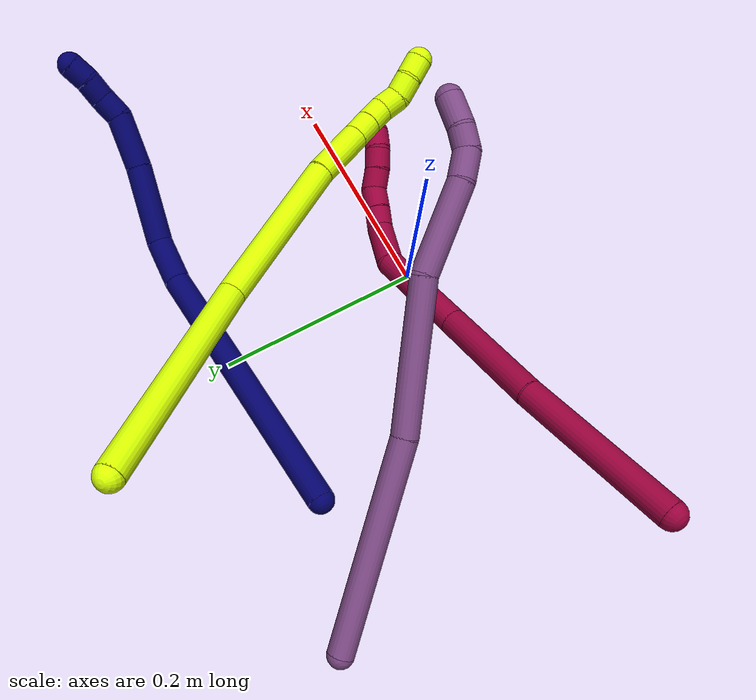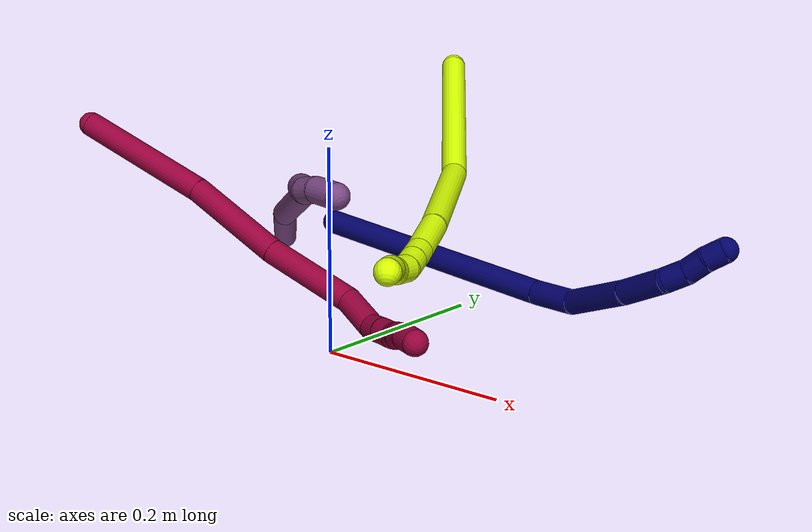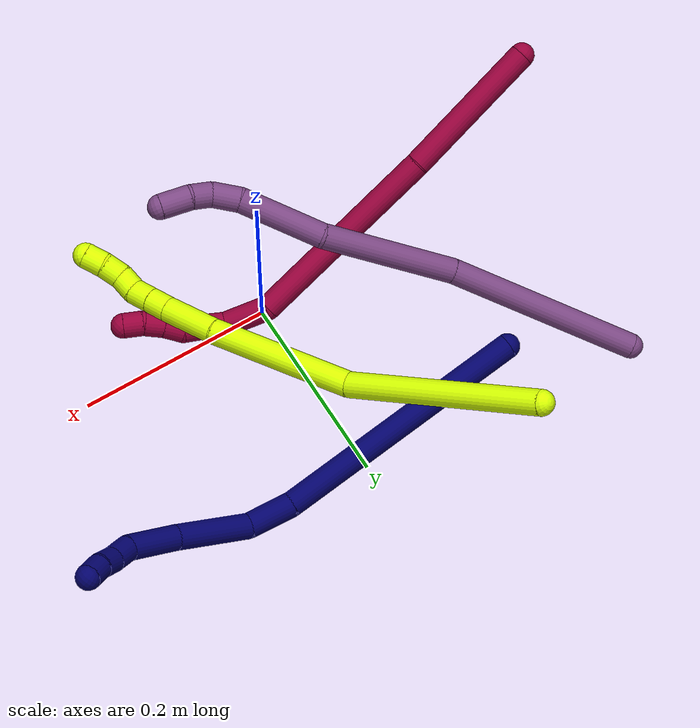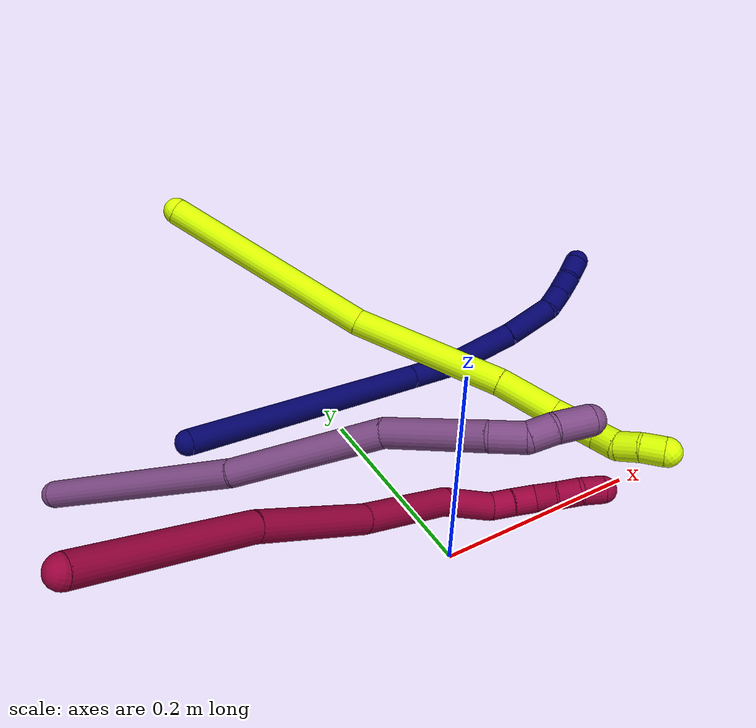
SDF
<sdf version="1.7">
 <world name="default">
  <model name="7">
   <static>0</static>
   <link name="7">
    <collision name="collision-cylinder-e_1_1_4">
     <pose>0.066317 -0.001298 -0.112353 3.13004 0.533197 3.09929</pose>
     <geometry><cylinder><radius>0.0125</radius><length>0.260944</length></cylinder></geometry>
     <surface>
      <friction><ode><mu>1.16</mu><mu2>1.16</mu2><slip1>0</slip1><slip2>0</slip2></ode></friction>
      <contact><ode><kp>1e+06</kp><kd>1</kd><max_vel>0</max_vel><min_depth>0.001</min_depth></ode></contact>
     </surface>
    </collision>
    <visual name="visual-cylinder-e_1_1_4">
     <pose>0.066317 -0.001298 -0.112353 3.13004 0.533197 3.09929</pose>
     <geometry><cylinder><radius>0.0125</radius><length>0.260944</length></cylinder></geometry>
     <material><ambient>0.003922 0 0.403922 1</ambient></material>
    </visual>
    <collision name="collision-cylinder-e_2_4_5">
     <pose>0.146467 -0.005777 -0.242865 2.9682 0.643711 2.63165</pose>
     <geometry><cylinder><radius>0.0125</radius><length>0.046094</length></cylinder></geometry>
     <surface>
      <friction><ode><mu>1.16</mu><mu2>1.16</mu2><slip1>0</slip1><slip2>0</slip2></ode></friction>
      <contact><ode><kp>1e+06</kp><kd>1</kd><max_vel>0</max_vel><min_depth>0.001</min_depth></ode></contact>
     </surface>
    </collision>
    <visual name="visual-cylinder-e_2_4_5">
     <pose>0.146467 -0.005777 -0.242865 2.9682 0.643711 2.63165</pose>
     <geometry><cylinder><radius>0.0125</radius><length>0.046094</length></cylinder></geometry>
     <material><ambient>0.003922 0 0.403922 1</ambient></material>
    </visual>
    <collision name="collision-cylinder-e_3_5_6">
     <pose>0.192187 -0.019113 -0.279352 2.63559 0.989422 2.24775</pose>
     <geometry><cylinder><radius>0.0125</radius><length>0.076313</length></cylinder></geometry>
     <surface>
      <friction><ode><mu>1.16</mu><mu2>1.16</mu2><slip1>0</slip1><slip2>0</slip2></ode></friction>
      <contact><ode><kp>1e+06</kp><kd>1</kd><max_vel>0</max_vel><min_depth>0.001</min_depth></ode></contact>
     </surface>
    </collision>
    <visual name="visual-cylinder-e_3_5_6">
     <pose>0.192187 -0.019113 -0.279352 2.63559 0.989422 2.24775</pose>
     <geometry><cylinder><radius>0.0125</radius><length>0.076313</length></cylinder></geometry>
     <material><ambient>0.003922 0 0.403922 1</ambient></material>
    </visual>
    <collision name="collision-cylinder-e_4_6_7">
     <pose>0.246971 -0.033752 -0.309043 2.76582 1.08072 2.52777</pose>
     <geometry><cylinder><radius>0.0125</radius><length>0.0519</length></cylinder></geometry>
     <surface>
      <friction><ode><mu>1.16</mu><mu2>1.16</mu2><slip1>0</slip1><slip2>0</slip2></ode></friction>
      <contact><ode><kp>1e+06</kp><kd>1</kd><max_vel>0</max_vel><min_depth>0.001</min_depth></ode></contact>
     </surface>
    </collision>
    <visual name="visual-cylinder-e_4_6_7">
     <pose>0.246971 -0.033752 -0.309043 2.76582 1.08072 2.52777</pose>
     <geometry><cylinder><radius>0.0125</radius><length>0.0519</length></cylinder></geometry>
     <material><ambient>0.003922 0 0.403922 1</ambient></material>
    </visual>
    <collision name="collision-cylinder-e_5_7_8">
     <pose>0.280174 -0.035409 -0.325045 -2.5945 1.08573 -2.271</pose>
     <geometry><cylinder><radius>0.0125</radius><length>0.023304</length></cylinder></geometry>
     <surface>
      <friction><ode><mu>1.16</mu><mu2>1.16</mu2><slip1>0</slip1><slip2>0</slip2></ode></friction>
      <contact><ode><kp>1e+06</kp><kd>1</kd><max_vel>0</max_vel><min_depth>0.001</min_depth></ode></contact>
     </surface>
    </collision>
    <visual name="visual-cylinder-e_5_7_8">
     <pose>0.280174 -0.035409 -0.325045 -2.5945 1.08573 -2.271</pose>
     <geometry><cylinder><radius>0.0125</radius><length>0.023304</length></cylinder></geometry>
     <material><ambient>0.003922 0 0.403922 1</ambient></material>
    </visual>
    <collision name="collision-cylinder-e_6_8_9">
     <pose>0.300582 -0.030576 -0.33181 -2.38494 1.28914 -2.16878</pose>
     <geometry><cylinder><radius>0.0125</radius><length>0.021028</length></cylinder></geometry>
     <surface>
      <friction><ode><mu>1.16</mu><mu2>1.16</mu2><slip1>0</slip1><slip2>0</slip2></ode></friction>
      <contact><ode><kp>1e+06</kp><kd>1</kd><max_vel>0</max_vel><min_depth>0.001</min_depth></ode></contact>
     </surface>
    </collision>
    <visual name="visual-cylinder-e_6_8_9">
     <pose>0.300582 -0.030576 -0.33181 -2.38494 1.28914 -2.16878</pose>
     <geometry><cylinder><radius>0.0125</radius><length>0.021028</length></cylinder></geometry>
     <material><ambient>0.003922 0 0.403922 1</ambient></material>
    </visual>
    <collision name="collision-cylinder-e_7_9_2">
     <pose>0.319687 -0.025099 -0.33726 -2.33473 1.08053 -1.90458</pose>
     <geometry><cylinder><radius>0.0125</radius><length>0.020416</length></cylinder></geometry>
     <surface>
      <friction><ode><mu>1.16</mu><mu2>1.16</mu2><slip1>0</slip1><slip2>0</slip2></ode></friction>
      <contact><ode><kp>1e+06</kp><kd>1</kd><max_vel>0</max_vel><min_depth>0.001</min_depth></ode></contact>
     </surface>
    </collision>
    <visual name="visual-cylinder-e_7_9_2">
     <pose>0.319687 -0.025099 -0.33726 -2.33473 1.08053 -1.90458</pose>
     <geometry><cylinder><radius>0.0125</radius><length>0.020416</length></cylinder></geometry>
     <material><ambient>0.003922 0 0.403922 1</ambient></material>
    </visual>
    <collision name="collision-sphere-2">
     <pose>0.328693 -0.021628 -0.340585 0 -0 0</pose>
     <geometry><sphere><radius>0.0125</radius></sphere></geometry>
     <surface>
      <friction><ode><mu>1.16</mu><mu2>1.16</mu2><slip1>0</slip1><slip2>0</slip2></ode></friction>
      <contact><ode><kp>1e+06</kp><kd>1</kd><max_vel>0</max_vel><min_depth>0.001</min_depth></ode></contact>
     </surface>
    </collision>
    <visual name="visual-sphere-2">
     <pose>0.328693 -0.021628 -0.340585 0 -0 0</pose>
     <geometry><sphere><radius>0.0125</radius></sphere></geometry>
     <material><ambient>0.003922 0 0.403922 1</ambient></material>
    </visual>
    <collision name="collision-sphere-9">
     <pose>0.310681 -0.02857 -0.333935 0 -0 0</pose>
     <geometry><sphere><radius>0.0125</radius></sphere></geometry>
     <surface>
      <friction><ode><mu>1.16</mu><mu2>1.16</mu2><slip1>0</slip1><slip2>0</slip2></ode></friction>
      <contact><ode><kp>1e+06</kp><kd>1</kd><max_vel>0</max_vel><min_depth>0.001</min_depth></ode></contact>
     </surface>
    </collision>
    <visual name="visual-sphere-9">
     <pose>0.310681 -0.02857 -0.333935 0 -0 0</pose>
     <geometry><sphere><radius>0.0125</radius></sphere></geometry>
     <material><ambient>0.003922 0 0.403922 1</ambient></material>
    </visual>
    <collision name="collision-sphere-4">
     <pose>0.132635 -0.002596 -0.224706 0 -0 0</pose>
     <geometry><sphere><radius>0.0125</radius></sphere></geometry>
     <surface>
      <friction><ode><mu>1.16</mu><mu2>1.16</mu2><slip1>0</slip1><slip2>0</slip2></ode></friction>
      <contact><ode><kp>1e+06</kp><kd>1</kd><max_vel>0</max_vel><min_depth>0.001</min_depth></ode></contact>
     </surface>
    </collision>
    <visual name="visual-sphere-4">
     <pose>0.132635 -0.002596 -0.224706 0 -0 0</pose>
     <geometry><sphere><radius>0.0125</radius></sphere></geometry>
     <material><ambient>0.003922 0 0.403922 1</ambient></material>
    </visual>
    <collision name="collision-sphere-1">
     <geometry><sphere><radius>0.0125</radius></sphere></geometry>
     <surface>
      <friction><ode><mu>1.16</mu><mu2>1.16</mu2><slip1>0</slip1><slip2>0</slip2></ode></friction>
      <contact><ode><kp>1e+06</kp><kd>1</kd><max_vel>0</max_vel><min_depth>0.001</min_depth></ode></contact>
     </surface>
    </collision>
    <visual name="visual-sphere-1">
     <geometry><sphere><radius>0.0125</radius></sphere></geometry>
     <material><ambient>0.003922 0 0.403922 1</ambient></material>
    </visual>
    <collision name="collision-sphere-8">
     <pose>0.290482 -0.032583 -0.329685 0 -0 0</pose>
     <geometry><sphere><radius>0.0125</radius></sphere></geometry>
     <surface>
      <friction><ode><mu>1.16</mu><mu2>1.16</mu2><slip1>0</slip1><slip2>0</slip2></ode></friction>
      <contact><ode><kp>1e+06</kp><kd>1</kd><max_vel>0</max_vel><min_depth>0.001</min_depth></ode></contact>
     </surface>
    </collision>
    <visual name="visual-sphere-8">
     <pose>0.290482 -0.032583 -0.329685 0 -0 0</pose>
     <geometry><sphere><radius>0.0125</radius></sphere></geometry>
     <material><ambient>0.003922 0 0.403922 1</ambient></material>
    </visual>
    <collision name="collision-sphere-5">
     <pose>0.160299 -0.008957 -0.261023 0 -0 0</pose>
     <geometry><sphere><radius>0.0125</radius></sphere></geometry>
     <surface>
      <friction><ode><mu>1.16</mu><mu2>1.16</mu2><slip1>0</slip1><slip2>0</slip2></ode></friction>
      <contact><ode><kp>1e+06</kp><kd>1</kd><max_vel>0</max_vel><min_depth>0.001</min_depth></ode></contact>
     </surface>
    </collision>
    <visual name="visual-sphere-5">
     <pose>0.160299 -0.008957 -0.261023 0 -0 0</pose>
     <geometry><sphere><radius>0.0125</radius></sphere></geometry>
     <material><ambient>0.003922 0 0.403922 1</ambient></material>
    </visual>
    <collision name="collision-sphere-6">
     <pose>0.224075 -0.02927 -0.297681 0 -0 0</pose>
     <geometry><sphere><radius>0.0125</radius></sphere></geometry>
     <surface>
      <friction><ode><mu>1.16</mu><mu2>1.16</mu2><slip1>0</slip1><slip2>0</slip2></ode></friction>
      <contact><ode><kp>1e+06</kp><kd>1</kd><max_vel>0</max_vel><min_depth>0.001</min_depth></ode></contact>
     </surface>
    </collision>
    <visual name="visual-sphere-6">
     <pose>0.224075 -0.02927 -0.297681 0 -0 0</pose>
     <geometry><sphere><radius>0.0125</radius></sphere></geometry>
     <material><ambient>0.003922 0 0.403922 1</ambient></material>
    </visual>
    <collision name="collision-sphere-7">
     <pose>0.269866 -0.038235 -0.320405 0 -0 0</pose>
     <geometry><sphere><radius>0.0125</radius></sphere></geometry>
     <surface>
      <friction><ode><mu>1.16</mu><mu2>1.16</mu2><slip1>0</slip1><slip2>0</slip2></ode></friction>
      <contact><ode><kp>1e+06</kp><kd>1</kd><max_vel>0</max_vel><min_depth>0.001</min_depth></ode></contact>
     </surface>
    </collision>
    <visual name="visual-sphere-7">
     <pose>0.269866 -0.038235 -0.320405 0 -0 0</pose>
     <geometry><sphere><radius>0.0125</radius></sphere></geometry>
     <material><ambient>0.003922 0 0.403922 1</ambient></material>
    </visual>
    <inertial>
     <pose>0.141835 -0.011592 -0.198616 0 -0 0</pose>
     <mass>0.5</mass>
     <inertia>
      <ixx>-0.001207</ixx>
      <ixy>0</ixy>
      <ixz>0</ixz>
      <iyy>0.001627</iyy>
      <iyz>0</iyz>
      <izz>-0.000813</izz>
     </inertia>
    </inertial>
   </link>
   <pose>-0.167548 0.1865 0.064631 0.020948 -0.905847 0.07514</pose>
  </model>
  <model name="8">
   <static>0</static>
   <link name="8">
    <collision name="collision-cylinder-e_1_1_4">
     <pose>0.009141 0.007286 -0.072463 -3.04138 0.124863 -1.7894</pose>
     <geometry><cylinder><radius>0.0125</radius><length>0.1468</length></cylinder></geometry>
     <surface>
      <friction><ode><mu>1.16</mu><mu2>1.16</mu2><slip1>0</slip1><slip2>0</slip2></ode></friction>
      <contact><ode><kp>1e+06</kp><kd>1</kd><max_vel>0</max_vel><min_depth>0.001</min_depth></ode></contact>
     </surface>
    </collision>
    <visual name="visual-cylinder-e_1_1_4">
     <pose>0.009141 0.007286 -0.072463 -3.04138 0.124863 -1.7894</pose>
     <geometry><cylinder><radius>0.0125</radius><length>0.1468</length></cylinder></geometry>
     <material><ambient>0.584314 0 0.227451 1</ambient></material>
    </visual>
    <collision name="collision-cylinder-e_2_4_5">
     <pose>0.021894 0.013891 -0.198624 3.12889 0.067148 2.7679</pose>
     <geometry><cylinder><radius>0.0125</radius><length>0.107645</length></cylinder></geometry>
     <surface>
      <friction><ode><mu>1.16</mu><mu2>1.16</mu2><slip1>0</slip1><slip2>0</slip2></ode></friction>
      <contact><ode><kp>1e+06</kp><kd>1</kd><max_vel>0</max_vel><min_depth>0.001</min_depth></ode></contact>
     </surface>
    </collision>
    <visual name="visual-cylinder-e_2_4_5">
     <pose>0.021894 0.013891 -0.198624 3.12889 0.067148 2.7679</pose>
     <geometry><cylinder><radius>0.0125</radius><length>0.107645</length></cylinder></geometry>
     <material><ambient>0.584314 0 0.227451 1</ambient></material>
    </visual>
    <collision name="collision-cylinder-e_3_5_6">
     <pose>0.032603 0.016281 -0.300114 -3.07739 0.147139 -2.31976</pose>
     <geometry><cylinder><radius>0.0125</radius><length>0.09683</length></cylinder></geometry>
     <surface>
      <friction><ode><mu>1.16</mu><mu2>1.16</mu2><slip1>0</slip1><slip2>0</slip2></ode></friction>
      <contact><ode><kp>1e+06</kp><kd>1</kd><max_vel>0</max_vel><min_depth>0.001</min_depth></ode></contact>
     </surface>
    </collision>
    <visual name="visual-cylinder-e_3_5_6">
     <pose>0.032603 0.016281 -0.300114 -3.07739 0.147139 -2.31976</pose>
     <geometry><cylinder><radius>0.0125</radius><length>0.09683</length></cylinder></geometry>
     <material><ambient>0.584314 0 0.227451 1</ambient></material>
    </visual>
    <collision name="collision-cylinder-e_4_6_7">
     <pose>0.046155 0.011955 -0.368745 2.80037 0.283964 1.38517</pose>
     <geometry><cylinder><radius>0.0125</radius><length>0.046069</length></cylinder></geometry>
     <surface>
      <friction><ode><mu>1.16</mu><mu2>1.16</mu2><slip1>0</slip1><slip2>0</slip2></ode></friction>
      <contact><ode><kp>1e+06</kp><kd>1</kd><max_vel>0</max_vel><min_depth>0.001</min_depth></ode></contact>
     </surface>
    </collision>
    <visual name="visual-cylinder-e_4_6_7">
     <pose>0.046155 0.011955 -0.368745 2.80037 0.283964 1.38517</pose>
     <geometry><cylinder><radius>0.0125</radius><length>0.046069</length></cylinder></geometry>
     <material><ambient>0.584314 0 0.227451 1</ambient></material>
    </visual>
    <collision name="collision-cylinder-e_5_7_8">
     <pose>0.059428 0.001916 -0.396803 2.79115 0.725608 2.26882</pose>
     <geometry><cylinder><radius>0.0125</radius><length>0.020555</length></cylinder></geometry>
     <surface>
      <friction><ode><mu>1.16</mu><mu2>1.16</mu2><slip1>0</slip1><slip2>0</slip2></ode></friction>
      <contact><ode><kp>1e+06</kp><kd>1</kd><max_vel>0</max_vel><min_depth>0.001</min_depth></ode></contact>
     </surface>
    </collision>
    <visual name="visual-cylinder-e_5_7_8">
     <pose>0.059428 0.001916 -0.396803 2.79115 0.725608 2.26882</pose>
     <geometry><cylinder><radius>0.0125</radius><length>0.020555</length></cylinder></geometry>
     <material><ambient>0.584314 0 0.227451 1</ambient></material>
    </visual>
    <collision name="collision-cylinder-e_6_8_9">
     <pose>0.072891 -0.003353 -0.412062 2.82549 0.665871 2.27783</pose>
     <geometry><cylinder><radius>0.0125</radius><length>0.021508</length></cylinder></geometry>
     <surface>
      <friction><ode><mu>1.16</mu><mu2>1.16</mu2><slip1>0</slip1><slip2>0</slip2></ode></friction>
      <contact><ode><kp>1e+06</kp><kd>1</kd><max_vel>0</max_vel><min_depth>0.001</min_depth></ode></contact>
     </surface>
    </collision>
    <visual name="visual-cylinder-e_6_8_9">
     <pose>0.072891 -0.003353 -0.412062 2.82549 0.665871 2.27783</pose>
     <geometry><cylinder><radius>0.0125</radius><length>0.021508</length></cylinder></geometry>
     <material><ambient>0.584314 0 0.227451 1</ambient></material>
    </visual>
    <collision name="collision-cylinder-e_7_9_10">
     <pose>0.087856 -0.010292 -0.424349 2.3491 0.941917 1.76595</pose>
     <geometry><cylinder><radius>0.0125</radius><length>0.02058</length></cylinder></geometry>
     <surface>
      <friction><ode><mu>1.16</mu><mu2>1.16</mu2><slip1>0</slip1><slip2>0</slip2></ode></friction>
      <contact><ode><kp>1e+06</kp><kd>1</kd><max_vel>0</max_vel><min_depth>0.001</min_depth></ode></contact>
     </surface>
    </collision>
    <visual name="visual-cylinder-e_7_9_10">
     <pose>0.087856 -0.010292 -0.424349 2.3491 0.941917 1.76595</pose>
     <geometry><cylinder><radius>0.0125</radius><length>0.02058</length></cylinder></geometry>
     <material><ambient>0.584314 0 0.227451 1</ambient></material>
    </visual>
    <collision name="collision-cylinder-e_8_10_11">
     <pose>0.103932 -0.017944 -0.433967 2.58484 0.886726 2.0581</pose>
     <geometry><cylinder><radius>0.0125</radius><length>0.020011</length></cylinder></geometry>
     <surface>
      <friction><ode><mu>1.16</mu><mu2>1.16</mu2><slip1>0</slip1><slip2>0</slip2></ode></friction>
      <contact><ode><kp>1e+06</kp><kd>1</kd><max_vel>0</max_vel><min_depth>0.001</min_depth></ode></contact>
     </surface>
    </collision>
    <visual name="visual-cylinder-e_8_10_11">
     <pose>0.103932 -0.017944 -0.433967 2.58484 0.886726 2.0581</pose>
     <geometry><cylinder><radius>0.0125</radius><length>0.020011</length></cylinder></geometry>
     <material><ambient>0.584314 0 0.227451 1</ambient></material>
    </visual>
    <collision name="collision-cylinder-e_9_11_2">
     <pose>0.117598 -0.024468 -0.446746 2.73588 0.632548 2.01936</pose>
     <geometry><cylinder><radius>0.0125</radius><length>0.020001</length></cylinder></geometry>
     <surface>
      <friction><ode><mu>1.16</mu><mu2>1.16</mu2><slip1>0</slip1><slip2>0</slip2></ode></friction>
      <contact><ode><kp>1e+06</kp><kd>1</kd><max_vel>0</max_vel><min_depth>0.001</min_depth></ode></contact>
     </surface>
    </collision>
    <visual name="visual-cylinder-e_9_11_2">
     <pose>0.117598 -0.024468 -0.446746 2.73588 0.632548 2.01936</pose>
     <geometry><cylinder><radius>0.0125</radius><length>0.020001</length></cylinder></geometry>
     <material><ambient>0.584314 0 0.227451 1</ambient></material>
    </visual>
    <collision name="collision-sphere-2">
     <pose>0.123511 -0.027652 -0.454157 0 -0 0</pose>
     <geometry><sphere><radius>0.0125</radius></sphere></geometry>
     <surface>
      <friction><ode><mu>1.16</mu><mu2>1.16</mu2><slip1>0</slip1><slip2>0</slip2></ode></friction>
      <contact><ode><kp>1e+06</kp><kd>1</kd><max_vel>0</max_vel><min_depth>0.001</min_depth></ode></contact>
     </surface>
    </collision>
    <visual name="visual-sphere-2">
     <pose>0.123511 -0.027652 -0.454157 0 -0 0</pose>
     <geometry><sphere><radius>0.0125</radius></sphere></geometry>
     <material><ambient>0.584314 0 0.227451 1</ambient></material>
    </visual>
    <collision name="collision-sphere-11">
     <pose>0.111686 -0.021285 -0.439335 0 -0 0</pose>
     <geometry><sphere><radius>0.0125</radius></sphere></geometry>
     <surface>
      <friction><ode><mu>1.16</mu><mu2>1.16</mu2><slip1>0</slip1><slip2>0</slip2></ode></friction>
      <contact><ode><kp>1e+06</kp><kd>1</kd><max_vel>0</max_vel><min_depth>0.001</min_depth></ode></contact>
     </surface>
    </collision>
    <visual name="visual-sphere-11">
     <pose>0.111686 -0.021285 -0.439335 0 -0 0</pose>
     <geometry><sphere><radius>0.0125</radius></sphere></geometry>
     <material><ambient>0.584314 0 0.227451 1</ambient></material>
    </visual>
    <collision name="collision-sphere-10">
     <pose>0.096177 -0.014602 -0.428599 0 -0 0</pose>
     <geometry><sphere><radius>0.0125</radius></sphere></geometry>
     <surface>
      <friction><ode><mu>1.16</mu><mu2>1.16</mu2><slip1>0</slip1><slip2>0</slip2></ode></friction>
      <contact><ode><kp>1e+06</kp><kd>1</kd><max_vel>0</max_vel><min_depth>0.001</min_depth></ode></contact>
     </surface>
    </collision>
    <visual name="visual-sphere-10">
     <pose>0.096177 -0.014602 -0.428599 0 -0 0</pose>
     <geometry><sphere><radius>0.0125</radius></sphere></geometry>
     <material><ambient>0.584314 0 0.227451 1</ambient></material>
    </visual>
    <collision name="collision-sphere-9">
     <pose>0.079534 -0.005982 -0.4201 0 -0 0</pose>
     <geometry><sphere><radius>0.0125</radius></sphere></geometry>
     <surface>
      <friction><ode><mu>1.16</mu><mu2>1.16</mu2><slip1>0</slip1><slip2>0</slip2></ode></friction>
      <contact><ode><kp>1e+06</kp><kd>1</kd><max_vel>0</max_vel><min_depth>0.001</min_depth></ode></contact>
     </surface>
    </collision>
    <visual name="visual-sphere-9">
     <pose>0.079534 -0.005982 -0.4201 0 -0 0</pose>
     <geometry><sphere><radius>0.0125</radius></sphere></geometry>
     <material><ambient>0.584314 0 0.227451 1</ambient></material>
    </visual>
    <collision name="collision-sphere-4">
     <pose>0.018282 0.014572 -0.144927 0 -0 0</pose>
     <geometry><sphere><radius>0.0125</radius></sphere></geometry>
     <surface>
      <friction><ode><mu>1.16</mu><mu2>1.16</mu2><slip1>0</slip1><slip2>0</slip2></ode></friction>
      <contact><ode><kp>1e+06</kp><kd>1</kd><max_vel>0</max_vel><min_depth>0.001</min_depth></ode></contact>
     </surface>
    </collision>
    <visual name="visual-sphere-4">
     <pose>0.018282 0.014572 -0.144927 0 -0 0</pose>
     <geometry><sphere><radius>0.0125</radius></sphere></geometry>
     <material><ambient>0.584314 0 0.227451 1</ambient></material>
    </visual>
    <collision name="collision-sphere-1">
     <geometry><sphere><radius>0.0125</radius></sphere></geometry>
     <surface>
      <friction><ode><mu>1.16</mu><mu2>1.16</mu2><slip1>0</slip1><slip2>0</slip2></ode></friction>
      <contact><ode><kp>1e+06</kp><kd>1</kd><max_vel>0</max_vel><min_depth>0.001</min_depth></ode></contact>
     </surface>
    </collision>
    <visual name="visual-sphere-1">
     <geometry><sphere><radius>0.0125</radius></sphere></geometry>
     <material><ambient>0.584314 0 0.227451 1</ambient></material>
    </visual>
    <collision name="collision-sphere-8">
     <pose>0.066248 -0.000724 -0.404024 0 -0 0</pose>
     <geometry><sphere><radius>0.0125</radius></sphere></geometry>
     <surface>
      <friction><ode><mu>1.16</mu><mu2>1.16</mu2><slip1>0</slip1><slip2>0</slip2></ode></friction>
      <contact><ode><kp>1e+06</kp><kd>1</kd><max_vel>0</max_vel><min_depth>0.001</min_depth></ode></contact>
     </surface>
    </collision>
    <visual name="visual-sphere-8">
     <pose>0.066248 -0.000724 -0.404024 0 -0 0</pose>
     <geometry><sphere><radius>0.0125</radius></sphere></geometry>
     <material><ambient>0.584314 0 0.227451 1</ambient></material>
    </visual>
    <collision name="collision-sphere-5">
     <pose>0.025505 0.013209 -0.252321 0 -0 0</pose>
     <geometry><sphere><radius>0.0125</radius></sphere></geometry>
     <surface>
      <friction><ode><mu>1.16</mu><mu2>1.16</mu2><slip1>0</slip1><slip2>0</slip2></ode></friction>
      <contact><ode><kp>1e+06</kp><kd>1</kd><max_vel>0</max_vel><min_depth>0.001</min_depth></ode></contact>
     </surface>
    </collision>
    <visual name="visual-sphere-5">
     <pose>0.025505 0.013209 -0.252321 0 -0 0</pose>
     <geometry><sphere><radius>0.0125</radius></sphere></geometry>
     <material><ambient>0.584314 0 0.227451 1</ambient></material>
    </visual>
    <collision name="collision-sphere-6">
     <pose>0.039701 0.019354 -0.347908 0 -0 0</pose>
     <geometry><sphere><radius>0.0125</radius></sphere></geometry>
     <surface>
      <friction><ode><mu>1.16</mu><mu2>1.16</mu2><slip1>0</slip1><slip2>0</slip2></ode></friction>
      <contact><ode><kp>1e+06</kp><kd>1</kd><max_vel>0</max_vel><min_depth>0.001</min_depth></ode></contact>
     </surface>
    </collision>
    <visual name="visual-sphere-6">
     <pose>0.039701 0.019354 -0.347908 0 -0 0</pose>
     <geometry><sphere><radius>0.0125</radius></sphere></geometry>
     <material><ambient>0.584314 0 0.227451 1</ambient></material>
    </visual>
    <collision name="collision-sphere-7">
     <pose>0.052608 0.004555 -0.389582 0 -0 0</pose>
     <geometry><sphere><radius>0.0125</radius></sphere></geometry>
     <surface>
      <friction><ode><mu>1.16</mu><mu2>1.16</mu2><slip1>0</slip1><slip2>0</slip2></ode></friction>
      <contact><ode><kp>1e+06</kp><kd>1</kd><max_vel>0</max_vel><min_depth>0.001</min_depth></ode></contact>
     </surface>
    </collision>
    <visual name="visual-sphere-7">
     <pose>0.052608 0.004555 -0.389582 0 -0 0</pose>
     <geometry><sphere><radius>0.0125</radius></sphere></geometry>
     <material><ambient>0.584314 0 0.227451 1</ambient></material>
    </visual>
    <inertial>
     <pose>0.036022 0.007198 -0.242876 0 -0 0</pose>
     <mass>0.5</mass>
     <inertia>
      <ixx>-0.000468</ixx>
      <ixy>0</ixy>
      <ixz>0</ixz>
      <iyy>-4.6e-05</iyy>
      <iyz>0</iyz>
      <izz>-0.000121</izz>
     </inertia>
    </inertial>
   </link>
   <pose>-0.314874 -0.025117 0.185593 0.541862 -0.941583 -0.509886</pose>
  </model>
  <model name="15">
   <static>0</static>
   <link name="15">
    <collision name="collision-cylinder-e_1_1_4">
     <pose>0.037245 -0.002299 -0.092708 3.11679 0.381903 3.01348</pose>
     <geometry><cylinder><radius>0.0125</radius><length>0.199873</length></cylinder></geometry>
     <surface>
      <friction><ode><mu>1.16</mu><mu2>1.16</mu2><slip1>0</slip1><slip2>0</slip2></ode></friction>
      <contact><ode><kp>1e+06</kp><kd>1</kd><max_vel>0</max_vel><min_depth>0.001</min_depth></ode></contact>
     </surface>
    </collision>
    <visual name="visual-cylinder-e_1_1_4">
     <pose>0.037245 -0.002299 -0.092708 3.11679 0.381903 3.01348</pose>
     <geometry><cylinder><radius>0.0125</radius><length>0.199873</length></cylinder></geometry>
     <material><ambient>0.835294 1 0 1</ambient></material>
    </visual>
    <collision name="collision-cylinder-e_2_4_5">
     <pose>0.116596 -0.021071 -0.242096 2.85876 0.619641 2.3047</pose>
     <geometry><cylinder><radius>0.0125</radius><length>0.145009</length></cylinder></geometry>
     <surface>
      <friction><ode><mu>1.16</mu><mu2>1.16</mu2><slip1>0</slip1><slip2>0</slip2></ode></friction>
      <contact><ode><kp>1e+06</kp><kd>1</kd><max_vel>0</max_vel><min_depth>0.001</min_depth></ode></contact>
     </surface>
    </collision>
    <visual name="visual-cylinder-e_2_4_5">
     <pose>0.116596 -0.021071 -0.242096 2.85876 0.619641 2.3047</pose>
     <geometry><cylinder><radius>0.0125</radius><length>0.145009</length></cylinder></geometry>
     <material><ambient>0.835294 1 0 1</ambient></material>
    </visual>
    <collision name="collision-cylinder-e_3_5_6">
     <pose>0.172049 -0.045735 -0.320737 2.78456 0.517618 1.94514</pose>
     <geometry><cylinder><radius>0.0125</radius><length>0.053943</length></cylinder></geometry>
     <surface>
      <friction><ode><mu>1.16</mu><mu2>1.16</mu2><slip1>0</slip1><slip2>0</slip2></ode></friction>
      <contact><ode><kp>1e+06</kp><kd>1</kd><max_vel>0</max_vel><min_depth>0.001</min_depth></ode></contact>
     </surface>
    </collision>
    <visual name="visual-cylinder-e_3_5_6">
     <pose>0.172049 -0.045735 -0.320737 2.78456 0.517618 1.94514</pose>
     <geometry><cylinder><radius>0.0125</radius><length>0.053943</length></cylinder></geometry>
     <material><ambient>0.835294 1 0 1</ambient></material>
    </visual>
    <collision name="collision-cylinder-e_4_6_7">
     <pose>0.191027 -0.057396 -0.350666 2.73101 0.57498 1.9145</pose>
     <geometry><cylinder><radius>0.0125</radius><length>0.020715</length></cylinder></geometry>
     <surface>
      <friction><ode><mu>1.16</mu><mu2>1.16</mu2><slip1>0</slip1><slip2>0</slip2></ode></friction>
      <contact><ode><kp>1e+06</kp><kd>1</kd><max_vel>0</max_vel><min_depth>0.001</min_depth></ode></contact>
     </surface>
    </collision>
    <visual name="visual-cylinder-e_4_6_7">
     <pose>0.191027 -0.057396 -0.350666 2.73101 0.57498 1.9145</pose>
     <geometry><cylinder><radius>0.0125</radius><length>0.020715</length></cylinder></geometry>
     <material><ambient>0.835294 1 0 1</ambient></material>
    </visual>
    <collision name="collision-cylinder-e_5_7_8">
     <pose>0.202009 -0.064303 -0.366633 2.73558 0.551034 1.8829</pose>
     <geometry><cylinder><radius>0.0125</radius><length>0.020435</length></cylinder></geometry>
     <surface>
      <friction><ode><mu>1.16</mu><mu2>1.16</mu2><slip1>0</slip1><slip2>0</slip2></ode></friction>
      <contact><ode><kp>1e+06</kp><kd>1</kd><max_vel>0</max_vel><min_depth>0.001</min_depth></ode></contact>
     </surface>
    </collision>
    <visual name="visual-cylinder-e_5_7_8">
     <pose>0.202009 -0.064303 -0.366633 2.73558 0.551034 1.8829</pose>
     <geometry><cylinder><radius>0.0125</radius><length>0.020435</length></cylinder></geometry>
     <material><ambient>0.835294 1 0 1</ambient></material>
    </visual>
    <collision name="collision-cylinder-e_6_8_9">
     <pose>0.212975 -0.07385 -0.380233 2.31301 0.595466 1.2185</pose>
     <geometry><cylinder><radius>0.0125</radius><length>0.020025</length></cylinder></geometry>
     <surface>
      <friction><ode><mu>1.16</mu><mu2>1.16</mu2><slip1>0</slip1><slip2>0</slip2></ode></friction>
      <contact><ode><kp>1e+06</kp><kd>1</kd><max_vel>0</max_vel><min_depth>0.001</min_depth></ode></contact>
     </surface>
    </collision>
    <visual name="visual-cylinder-e_6_8_9">
     <pose>0.212975 -0.07385 -0.380233 2.31301 0.595466 1.2185</pose>
     <geometry><cylinder><radius>0.0125</radius><length>0.020025</length></cylinder></geometry>
     <material><ambient>0.835294 1 0 1</ambient></material>
    </visual>
    <collision name="collision-cylinder-e_7_9_10">
     <pose>0.227032 -0.083296 -0.390033 2.46986 1.00491 2.00965</pose>
     <geometry><cylinder><radius>0.0125</radius><length>0.02</length></cylinder></geometry>
     <surface>
      <friction><ode><mu>1.16</mu><mu2>1.16</mu2><slip1>0</slip1><slip2>0</slip2></ode></friction>
      <contact><ode><kp>1e+06</kp><kd>1</kd><max_vel>0</max_vel><min_depth>0.001</min_depth></ode></contact>
     </surface>
    </collision>
    <visual name="visual-cylinder-e_7_9_10">
     <pose>0.227032 -0.083296 -0.390033 2.46986 1.00491 2.00965</pose>
     <geometry><cylinder><radius>0.0125</radius><length>0.02</length></cylinder></geometry>
     <material><ambient>0.835294 1 0 1</ambient></material>
    </visual>
    <collision name="collision-cylinder-e_8_10_2">
     <pose>0.243214 -0.08927 -0.399985 2.71192 0.885348 2.27884</pose>
     <geometry><cylinder><radius>0.0125</radius><length>0.02</length></cylinder></geometry>
     <surface>
      <friction><ode><mu>1.16</mu><mu2>1.16</mu2><slip1>0</slip1><slip2>0</slip2></ode></friction>
      <contact><ode><kp>1e+06</kp><kd>1</kd><max_vel>0</max_vel><min_depth>0.001</min_depth></ode></contact>
     </surface>
    </collision>
    <visual name="visual-cylinder-e_8_10_2">
     <pose>0.243214 -0.08927 -0.399985 2.71192 0.885348 2.27884</pose>
     <geometry><cylinder><radius>0.0125</radius><length>0.02</length></cylinder></geometry>
     <material><ambient>0.835294 1 0 1</ambient></material>
    </visual>
    <collision name="collision-sphere-2">
     <pose>0.250956 -0.091907 -0.40574 0 -0 0</pose>
     <geometry><sphere><radius>0.0125</radius></sphere></geometry>
     <surface>
      <friction><ode><mu>1.16</mu><mu2>1.16</mu2><slip1>0</slip1><slip2>0</slip2></ode></friction>
      <contact><ode><kp>1e+06</kp><kd>1</kd><max_vel>0</max_vel><min_depth>0.001</min_depth></ode></contact>
     </surface>
    </collision>
    <visual name="visual-sphere-2">
     <pose>0.250956 -0.091907 -0.40574 0 -0 0</pose>
     <geometry><sphere><radius>0.0125</radius></sphere></geometry>
     <material><ambient>0.835294 1 0 1</ambient></material>
    </visual>
    <collision name="collision-sphere-10">
     <pose>0.235473 -0.086633 -0.39423 0 -0 0</pose>
     <geometry><sphere><radius>0.0125</radius></sphere></geometry>
     <surface>
      <friction><ode><mu>1.16</mu><mu2>1.16</mu2><slip1>0</slip1><slip2>0</slip2></ode></friction>
      <contact><ode><kp>1e+06</kp><kd>1</kd><max_vel>0</max_vel><min_depth>0.001</min_depth></ode></contact>
     </surface>
    </collision>
    <visual name="visual-sphere-10">
     <pose>0.235473 -0.086633 -0.39423 0 -0 0</pose>
     <geometry><sphere><radius>0.0125</radius></sphere></geometry>
     <material><ambient>0.835294 1 0 1</ambient></material>
    </visual>
    <collision name="collision-sphere-9">
     <pose>0.21859 -0.079959 -0.385836 0 -0 0</pose>
     <geometry><sphere><radius>0.0125</radius></sphere></geometry>
     <surface>
      <friction><ode><mu>1.16</mu><mu2>1.16</mu2><slip1>0</slip1><slip2>0</slip2></ode></friction>
      <contact><ode><kp>1e+06</kp><kd>1</kd><max_vel>0</max_vel><min_depth>0.001</min_depth></ode></contact>
     </surface>
    </collision>
    <visual name="visual-sphere-9">
     <pose>0.21859 -0.079959 -0.385836 0 -0 0</pose>
     <geometry><sphere><radius>0.0125</radius></sphere></geometry>
     <material><ambient>0.835294 1 0 1</ambient></material>
    </visual>
    <collision name="collision-sphere-4">
     <pose>0.07449 -0.004599 -0.185417 0 -0 0</pose>
     <geometry><sphere><radius>0.0125</radius></sphere></geometry>
     <surface>
      <friction><ode><mu>1.16</mu><mu2>1.16</mu2><slip1>0</slip1><slip2>0</slip2></ode></friction>
      <contact><ode><kp>1e+06</kp><kd>1</kd><max_vel>0</max_vel><min_depth>0.001</min_depth></ode></contact>
     </surface>
    </collision>
    <visual name="visual-sphere-4">
     <pose>0.07449 -0.004599 -0.185417 0 -0 0</pose>
     <geometry><sphere><radius>0.0125</radius></sphere></geometry>
     <material><ambient>0.835294 1 0 1</ambient></material>
    </visual>
    <collision name="collision-sphere-1">
     <geometry><sphere><radius>0.0125</radius></sphere></geometry>
     <surface>
      <friction><ode><mu>1.16</mu><mu2>1.16</mu2><slip1>0</slip1><slip2>0</slip2></ode></friction>
      <contact><ode><kp>1e+06</kp><kd>1</kd><max_vel>0</max_vel><min_depth>0.001</min_depth></ode></contact>
     </surface>
    </collision>
    <visual name="visual-sphere-1">
     <geometry><sphere><radius>0.0125</radius></sphere></geometry>
     <material><ambient>0.835294 1 0 1</ambient></material>
    </visual>
    <collision name="collision-sphere-8">
     <pose>0.207359 -0.067741 -0.374631 0 -0 0</pose>
     <geometry><sphere><radius>0.0125</radius></sphere></geometry>
     <surface>
      <friction><ode><mu>1.16</mu><mu2>1.16</mu2><slip1>0</slip1><slip2>0</slip2></ode></friction>
      <contact><ode><kp>1e+06</kp><kd>1</kd><max_vel>0</max_vel><min_depth>0.001</min_depth></ode></contact>
     </surface>
    </collision>
    <visual name="visual-sphere-8">
     <pose>0.207359 -0.067741 -0.374631 0 -0 0</pose>
     <geometry><sphere><radius>0.0125</radius></sphere></geometry>
     <material><ambient>0.835294 1 0 1</ambient></material>
    </visual>
    <collision name="collision-sphere-5">
     <pose>0.158703 -0.037544 -0.298776 0 -0 0</pose>
     <geometry><sphere><radius>0.0125</radius></sphere></geometry>
     <surface>
      <friction><ode><mu>1.16</mu><mu2>1.16</mu2><slip1>0</slip1><slip2>0</slip2></ode></friction>
      <contact><ode><kp>1e+06</kp><kd>1</kd><max_vel>0</max_vel><min_depth>0.001</min_depth></ode></contact>
     </surface>
    </collision>
    <visual name="visual-sphere-5">
     <pose>0.158703 -0.037544 -0.298776 0 -0 0</pose>
     <geometry><sphere><radius>0.0125</radius></sphere></geometry>
     <material><ambient>0.835294 1 0 1</ambient></material>
    </visual>
    <collision name="collision-sphere-6">
     <pose>0.185395 -0.053927 -0.342697 0 -0 0</pose>
     <geometry><sphere><radius>0.0125</radius></sphere></geometry>
     <surface>
      <friction><ode><mu>1.16</mu><mu2>1.16</mu2><slip1>0</slip1><slip2>0</slip2></ode></friction>
      <contact><ode><kp>1e+06</kp><kd>1</kd><max_vel>0</max_vel><min_depth>0.001</min_depth></ode></contact>
     </surface>
    </collision>
    <visual name="visual-sphere-6">
     <pose>0.185395 -0.053927 -0.342697 0 -0 0</pose>
     <geometry><sphere><radius>0.0125</radius></sphere></geometry>
     <material><ambient>0.835294 1 0 1</ambient></material>
    </visual>
    <collision name="collision-sphere-7">
     <pose>0.19666 -0.060865 -0.358636 0 -0 0</pose>
     <geometry><sphere><radius>0.0125</radius></sphere></geometry>
     <surface>
      <friction><ode><mu>1.16</mu><mu2>1.16</mu2><slip1>0</slip1><slip2>0</slip2></ode></friction>
      <contact><ode><kp>1e+06</kp><kd>1</kd><max_vel>0</max_vel><min_depth>0.001</min_depth></ode></contact>
     </surface>
    </collision>
    <visual name="visual-sphere-7">
     <pose>0.19666 -0.060865 -0.358636 0 -0 0</pose>
     <geometry><sphere><radius>0.0125</radius></sphere></geometry>
     <material><ambient>0.835294 1 0 1</ambient></material>
    </visual>
    <inertial>
     <pose>0.110775 -0.026831 -0.218217 0 -0 0</pose>
     <mass>0.5</mass>
     <inertia>
      <ixx>-0.000494</ixx>
      <ixy>0</ixy>
      <ixz>0</ixz>
      <iyy>0.001125</iyy>
      <iyz>0</iyz>
      <izz>-0.000364</izz>
     </inertia>
    </inertial>
   </link>
   <pose>-0.108907 0.318825 0.226732 -0.294754 -0.731123 -0.559321</pose>
  </model>
  <model name="20">
   <static>0</static>
   <link name="20">
    <collision name="collision-cylinder-e_1_1_4">
     <pose>0.063559 -0.045191 -0.060035 2.49633 0.702077 1.6618</pose>
     <geometry><cylinder><radius>0.0125</radius><length>0.196838</length></cylinder></geometry>
     <surface>
      <friction><ode><mu>1.16</mu><mu2>1.16</mu2><slip1>0</slip1><slip2>0</slip2></ode></friction>
      <contact><ode><kp>1e+06</kp><kd>1</kd><max_vel>0</max_vel><min_depth>0.001</min_depth></ode></contact>
     </surface>
    </collision>
    <visual name="visual-cylinder-e_1_1_4">
     <pose>0.063559 -0.045191 -0.060035 2.49633 0.702077 1.6618</pose>
     <geometry><cylinder><radius>0.0125</radius><length>0.196838</length></cylinder></geometry>
     <material><ambient>0.478431 0.278431 0.509804 1</ambient></material>
    </visual>
    <collision name="collision-cylinder-e_2_4_5">
     <pose>0.175241 -0.111353 -0.164637 2.7018 0.773785 2.13807</pose>
     <geometry><cylinder><radius>0.0125</radius><length>0.13772</length></cylinder></geometry>
     <surface>
      <friction><ode><mu>1.16</mu><mu2>1.16</mu2><slip1>0</slip1><slip2>0</slip2></ode></friction>
      <contact><ode><kp>1e+06</kp><kd>1</kd><max_vel>0</max_vel><min_depth>0.001</min_depth></ode></contact>
     </surface>
    </collision>
    <visual name="visual-cylinder-e_2_4_5">
     <pose>0.175241 -0.111353 -0.164637 2.7018 0.773785 2.13807</pose>
     <geometry><cylinder><radius>0.0125</radius><length>0.13772</length></cylinder></geometry>
     <material><ambient>0.478431 0.278431 0.509804 1</ambient></material>
    </visual>
    <collision name="collision-cylinder-e_3_5_6">
     <pose>0.245923 -0.155634 -0.237123 2.44591 0.555164 1.33211</pose>
     <geometry><cylinder><radius>0.0125</radius><length>0.085601</length></cylinder></geometry>
     <surface>
      <friction><ode><mu>1.16</mu><mu2>1.16</mu2><slip1>0</slip1><slip2>0</slip2></ode></friction>
      <contact><ode><kp>1e+06</kp><kd>1</kd><max_vel>0</max_vel><min_depth>0.001</min_depth></ode></contact>
     </surface>
    </collision>
    <visual name="visual-cylinder-e_3_5_6">
     <pose>0.245923 -0.155634 -0.237123 2.44591 0.555164 1.33211</pose>
     <geometry><cylinder><radius>0.0125</radius><length>0.085601</length></cylinder></geometry>
     <material><ambient>0.478431 0.278431 0.509804 1</ambient></material>
    </visual>
    <collision name="collision-cylinder-e_4_6_7">
     <pose>0.274874 -0.184505 -0.276451 2.6881 0.466589 1.60028</pose>
     <geometry><cylinder><radius>0.0125</radius><length>0.028417</length></cylinder></geometry>
     <surface>
      <friction><ode><mu>1.16</mu><mu2>1.16</mu2><slip1>0</slip1><slip2>0</slip2></ode></friction>
      <contact><ode><kp>1e+06</kp><kd>1</kd><max_vel>0</max_vel><min_depth>0.001</min_depth></ode></contact>
     </surface>
    </collision>
    <visual name="visual-cylinder-e_4_6_7">
     <pose>0.274874 -0.184505 -0.276451 2.6881 0.466589 1.60028</pose>
     <geometry><cylinder><radius>0.0125</radius><length>0.028417</length></cylinder></geometry>
     <material><ambient>0.478431 0.278431 0.509804 1</ambient></material>
    </visual>
    <collision name="collision-cylinder-e_5_7_8">
     <pose>0.287564 -0.189752 -0.296205 -3.1041 0.646056 -3.02968</pose>
     <geometry><cylinder><radius>0.0125</radius><length>0.020922</length></cylinder></geometry>
     <surface>
      <friction><ode><mu>1.16</mu><mu2>1.16</mu2><slip1>0</slip1><slip2>0</slip2></ode></friction>
      <contact><ode><kp>1e+06</kp><kd>1</kd><max_vel>0</max_vel><min_depth>0.001</min_depth></ode></contact>
     </surface>
    </collision>
    <visual name="visual-cylinder-e_5_7_8">
     <pose>0.287564 -0.189752 -0.296205 -3.1041 0.646056 -3.02968</pose>
     <geometry><cylinder><radius>0.0125</radius><length>0.020922</length></cylinder></geometry>
     <material><ambient>0.478431 0.278431 0.509804 1</ambient></material>
    </visual>
    <collision name="collision-cylinder-e_6_8_2">
     <pose>0.300058 -0.187728 -0.318382 -3.01854 0.418361 -2.5767</pose>
     <geometry><cylinder><radius>0.0125</radius><length>0.030502</length></cylinder></geometry>
     <surface>
      <friction><ode><mu>1.16</mu><mu2>1.16</mu2><slip1>0</slip1><slip2>0</slip2></ode></friction>
      <contact><ode><kp>1e+06</kp><kd>1</kd><max_vel>0</max_vel><min_depth>0.001</min_depth></ode></contact>
     </surface>
    </collision>
    <visual name="visual-cylinder-e_6_8_2">
     <pose>0.300058 -0.187728 -0.318382 -3.01854 0.418361 -2.5767</pose>
     <geometry><cylinder><radius>0.0125</radius><length>0.030502</length></cylinder></geometry>
     <material><ambient>0.478431 0.278431 0.509804 1</ambient></material>
    </visual>
    <collision name="collision-sphere-2">
     <pose>0.306254 -0.186017 -0.332212 0 -0 0</pose>
     <geometry><sphere><radius>0.0125</radius></sphere></geometry>
     <surface>
      <friction><ode><mu>1.16</mu><mu2>1.16</mu2><slip1>0</slip1><slip2>0</slip2></ode></friction>
      <contact><ode><kp>1e+06</kp><kd>1</kd><max_vel>0</max_vel><min_depth>0.001</min_depth></ode></contact>
     </surface>
    </collision>
    <visual name="visual-sphere-2">
     <pose>0.306254 -0.186017 -0.332212 0 -0 0</pose>
     <geometry><sphere><radius>0.0125</radius></sphere></geometry>
     <material><ambient>0.478431 0.278431 0.509804 1</ambient></material>
    </visual>
    <collision name="collision-sphere-4">
     <pose>0.127119 -0.090383 -0.12007 0 -0 0</pose>
     <geometry><sphere><radius>0.0125</radius></sphere></geometry>
     <surface>
      <friction><ode><mu>1.16</mu><mu2>1.16</mu2><slip1>0</slip1><slip2>0</slip2></ode></friction>
      <contact><ode><kp>1e+06</kp><kd>1</kd><max_vel>0</max_vel><min_depth>0.001</min_depth></ode></contact>
     </surface>
    </collision>
    <visual name="visual-sphere-4">
     <pose>0.127119 -0.090383 -0.12007 0 -0 0</pose>
     <geometry><sphere><radius>0.0125</radius></sphere></geometry>
     <material><ambient>0.478431 0.278431 0.509804 1</ambient></material>
    </visual>
    <collision name="collision-sphere-1">
     <geometry><sphere><radius>0.0125</radius></sphere></geometry>
     <surface>
      <friction><ode><mu>1.16</mu><mu2>1.16</mu2><slip1>0</slip1><slip2>0</slip2></ode></friction>
      <contact><ode><kp>1e+06</kp><kd>1</kd><max_vel>0</max_vel><min_depth>0.001</min_depth></ode></contact>
     </surface>
    </collision>
    <visual name="visual-sphere-1">
     <geometry><sphere><radius>0.0125</radius></sphere></geometry>
     <material><ambient>0.478431 0.278431 0.509804 1</ambient></material>
    </visual>
    <collision name="collision-sphere-8">
     <pose>0.293862 -0.189439 -0.304551 0 -0 0</pose>
     <geometry><sphere><radius>0.0125</radius></sphere></geometry>
     <surface>
      <friction><ode><mu>1.16</mu><mu2>1.16</mu2><slip1>0</slip1><slip2>0</slip2></ode></friction>
      <contact><ode><kp>1e+06</kp><kd>1</kd><max_vel>0</max_vel><min_depth>0.001</min_depth></ode></contact>
     </surface>
    </collision>
    <visual name="visual-sphere-8">
     <pose>0.293862 -0.189439 -0.304551 0 -0 0</pose>
     <geometry><sphere><radius>0.0125</radius></sphere></geometry>
     <material><ambient>0.478431 0.278431 0.509804 1</ambient></material>
    </visual>
    <collision name="collision-sphere-5">
     <pose>0.223364 -0.132323 -0.209203 0 -0 0</pose>
     <geometry><sphere><radius>0.0125</radius></sphere></geometry>
     <surface>
      <friction><ode><mu>1.16</mu><mu2>1.16</mu2><slip1>0</slip1><slip2>0</slip2></ode></friction>
      <contact><ode><kp>1e+06</kp><kd>1</kd><max_vel>0</max_vel><min_depth>0.001</min_depth></ode></contact>
     </surface>
    </collision>
    <visual name="visual-sphere-5">
     <pose>0.223364 -0.132323 -0.209203 0 -0 0</pose>
     <geometry><sphere><radius>0.0125</radius></sphere></geometry>
     <material><ambient>0.478431 0.278431 0.509804 1</ambient></material>
    </visual>
    <collision name="collision-sphere-6">
     <pose>0.268483 -0.178946 -0.265044 0 -0 0</pose>
     <geometry><sphere><radius>0.0125</radius></sphere></geometry>
     <surface>
      <friction><ode><mu>1.16</mu><mu2>1.16</mu2><slip1>0</slip1><slip2>0</slip2></ode></friction>
      <contact><ode><kp>1e+06</kp><kd>1</kd><max_vel>0</max_vel><min_depth>0.001</min_depth></ode></contact>
     </surface>
    </collision>
    <visual name="visual-sphere-6">
     <pose>0.268483 -0.178946 -0.265044 0 -0 0</pose>
     <geometry><sphere><radius>0.0125</radius></sphere></geometry>
     <material><ambient>0.478431 0.278431 0.509804 1</ambient></material>
    </visual>
    <collision name="collision-sphere-7">
     <pose>0.281266 -0.190065 -0.287858 0 -0 0</pose>
     <geometry><sphere><radius>0.0125</radius></sphere></geometry>
     <surface>
      <friction><ode><mu>1.16</mu><mu2>1.16</mu2><slip1>0</slip1><slip2>0</slip2></ode></friction>
      <contact><ode><kp>1e+06</kp><kd>1</kd><max_vel>0</max_vel><min_depth>0.001</min_depth></ode></contact>
     </surface>
    </collision>
    <visual name="visual-sphere-7">
     <pose>0.281266 -0.190065 -0.287858 0 -0 0</pose>
     <geometry><sphere><radius>0.0125</radius></sphere></geometry>
     <material><ambient>0.478431 0.278431 0.509804 1</ambient></material>
    </visual>
    <inertial>
     <pose>0.161353 -0.104985 -0.157107 0 -0 0</pose>
     <mass>0.5</mass>
     <inertia>
      <ixx>0.000571</ixx>
      <ixy>0</ixy>
      <ixz>0</ixz>
      <iyy>0.001129</iyy>
      <iyz>0</iyz>
      <izz>-0.000236</izz>
     </inertia>
    </inertial>
   </link>
   <pose>-0.286852 0.230418 0.018537 -0.171419 -1.14706 -0.146659</pose>
  </model>
 </world>
</sdf>
